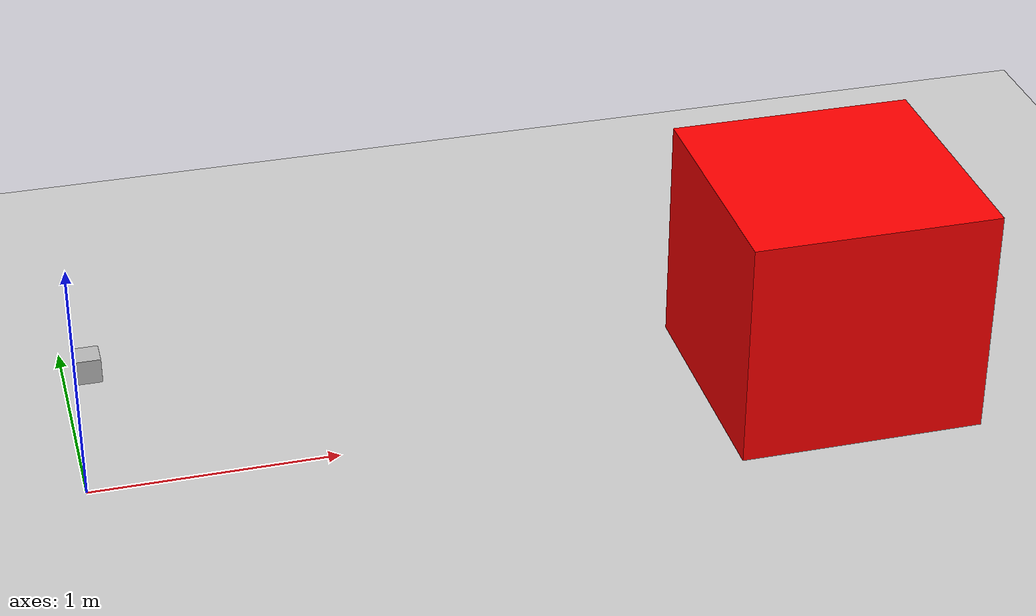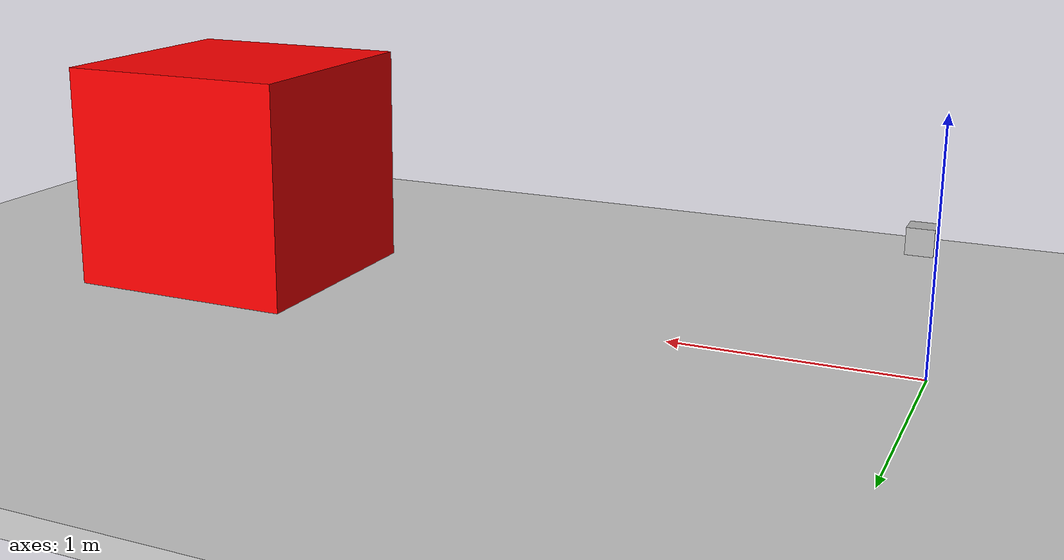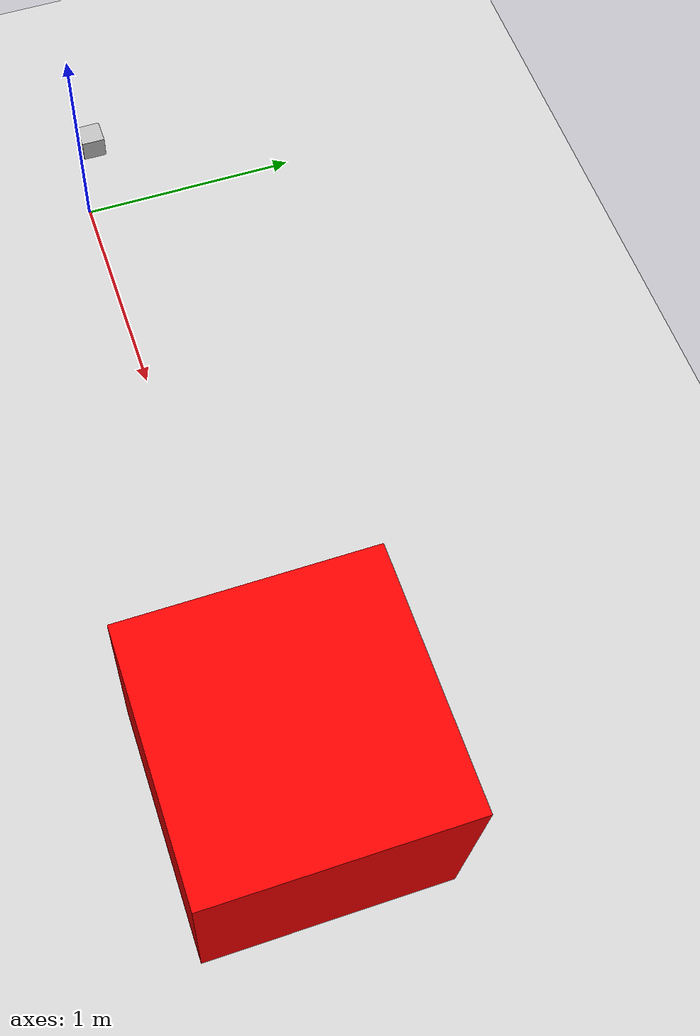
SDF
<?xml version="1.0" ?>
<sdf version="1.6">
  <world name="default">
    <physics name="1ms" type="ignored">
      <max_step_size>0.001</max_step_size>
      <real_time_factor>1.0</real_time_factor>
    </physics>
    <plugin
      filename="gz-sim-physics-system"
      name="gz::sim::systems::Physics">
    </plugin>
    <plugin
      filename="gz-sim-sensors-system"
      name="gz::sim::systems::Sensors">
      <render_engine>ogre2</render_engine>
    </plugin>
    <plugin
      filename="gz-sim-scene-broadcaster-system"
      name="gz::sim::systems::SceneBroadcaster">
    </plugin>
    <plugin
      filename="gz-sim-user-commands-system"
      name="gz::sim::systems::UserCommands">
    </plugin>

    <light type="directional" name="sun">
      <cast_shadows>true</cast_shadows>
      <pose>0 0 10 0 0 0</pose>
      <diffuse>0.8 0.8 0.8 1</diffuse>
      <specular>0.2 0.2 0.2 1</specular>
      <attenuation>
        <range>1000</range>
        <constant>0.9</constant>
        <linear>0.01</linear>
        <quadratic>0.001</quadratic>
      </attenuation>
      <direction>-0.5 0.1 -0.9</direction>
    </light>

    <model name="ground_plane">
      <static>true</static>
      <link name="link">
        <collision name="collision">
          <geometry>
            <box>
              <size>20 20 0.1</size>
            </box>
          </geometry>
        </collision>
        <visual name="visual">
          <geometry>
            <box>
              <size>20 20 0.1</size>
            </box>
          </geometry>
          <material>
            <ambient>0.8 0.8 0.8 1</ambient>
            <diffuse>0.8 0.8 0.8 1</diffuse>
            <specular>0.8 0.8 0.8 1</specular>
          </material>
        </visual>
      </link>
    </model>

    <model name="box">
      <pose>3 0 0.5 0 0 0</pose>
      <link name="box_link">
        <inertial>
          <inertia>
            <ixx>1</ixx>
            <ixy>0</ixy>
            <ixz>0</ixz>
            <iyy>1</iyy>
            <iyz>0</iyz>
            <izz>1</izz>
          </inertia>
          <mass>1.0</mass>
        </inertial>
        <collision name="box_collision">
          <geometry>
            <box>
              <size>1 1 1</size>
            </box>
          </geometry>
        </collision>

        <visual name="box_visual">
          <geometry>
            <box>
              <size>1 1 1</size>
            </box>
          </geometry>
          <material>
            <ambient>1 0 0 1</ambient>
            <diffuse>1 0 0 1</diffuse>
            <specular>1 0 0 1</specular>
          </material>
        </visual>
      </link>
    </model>

    <model name="rgbd_camera">
      <pose>0 0 0.5 0 0 0</pose>
      <link name="rgbd_camera_link">
        <pose>0.05 0.05 0.05 0 0 0</pose>
        <inertial>
          <mass>0.1</mass>
          <inertia>
            <ixx>0.000166667</ixx>
            <iyy>0.000166667</iyy>
            <izz>0.000166667</izz>
          </inertia>
        </inertial>
        <collision name="collision">
          <geometry>
            <box>
              <size>0.1 0.1 0.1</size>
            </box>
          </geometry>
        </collision>
        <visual name="visual">
          <geometry>
            <box>
              <size>0.1 0.1 0.1</size>
            </box>
          </geometry>
        </visual>
        <sensor name="rgbd_camera" type="rgbd_camera">
          <update_rate>10</update_rate>
          <topic>rgbd_camera</topic>
          <camera>
          <optical_frame_id>rgbd_camera_link</optical_frame_id>
          <horizontal_fov>1.047</horizontal_fov>
          <image>
            <width>1280</width>
            <height>720</height>
            <format>R8G8B8</format>
          </image>
            <clip>
            <near>0.3</near>
            <far>6.0</far>
            </clip>
          </camera>
          </sensor>
      </link>
      <static>true</static>
    </model>
  </world>
</sdf>
